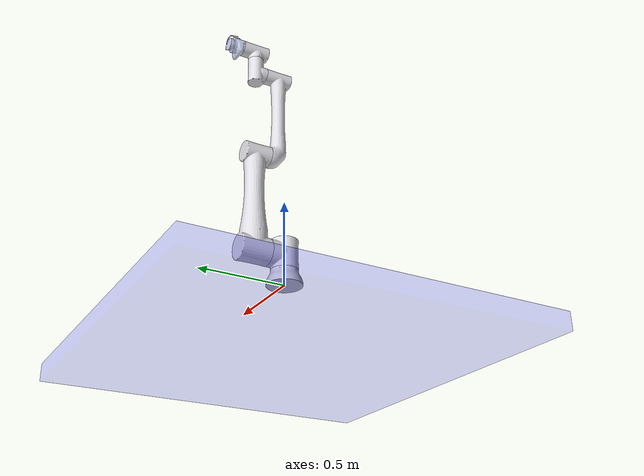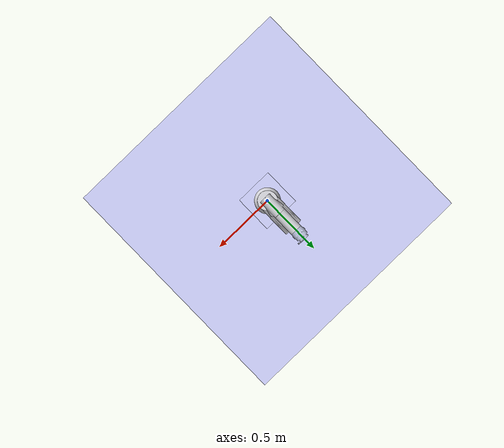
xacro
<?xml version="1.0" encoding="UTF-8"?>
<robot xmlns:xacro="http://wiki.ros.org/xacro" name="sbot">

  <!-- Use this if parameters are set from the launch file, otherwise delete -->
  <xacro:arg name="prefix" default="" />

  <xacro:arg name="use_mock_hardware" default="false" />
  <xacro:arg name="mock_sensor_commands" default="false" />
  <xacro:arg name="sim_gazebo_classic" default="false" />
  <xacro:arg name="sim_gazebo" default="false" />
  <xacro:arg name="simulation_controllers" default="" />

  <xacro:include filename="$(find standard_bots_description)/urdf/sbot/sbot_macro.xacro"/>
  <xacro:include filename="$(find standard_bots_description)/urdf/sbot/sbot_macro.ros2_control.xacro"/>

  <!-- create link fixed to the "world" -->
  <link name="world" />

  <!-- Load robot's macro with parameters -->
  <!-- set prefix if multiple robots are used -->
  <xacro:sbot prefix="$(arg prefix)" parent="world" >
    <origin xyz="0 0 0" rpy="0 0 ${-pi/2}" />          <!-- position robot in the world -->
  </xacro:sbot>

  <xacro:sbot_ros2_control
    name="sbot"
    prefix="$(arg prefix)"
    use_mock_hardware="$(arg use_mock_hardware)"
    mock_sensor_commands="$(arg mock_sensor_commands)"
    sim_gazebo_classic="$(arg sim_gazebo_classic)"
    sim_gazebo="$(arg sim_gazebo)"
    simulation_controllers="$(arg simulation_controllers)" />

  <!-- base scene -->
  <xacro:arg name="scene_column_a" default="0.3" />
  <xacro:arg name="scene_column_h" default="0.3" />
  <xacro:arg name="scene_floor_a" default="2.0" />
  <xacro:arg name="scene_floor_h" default="0.1" />
  <xacro:arg name="scene_environment_alpha" default="0.1" />

  <xacro:property name="scene_column_a" default="$(arg scene_column_a)" />
  <xacro:property name="scene_column_h" default="$(arg scene_column_h)" />
  <xacro:property name="scene_floor_a" default="$(arg scene_floor_a)" />
  <xacro:property name="scene_floor_h" default="$(arg scene_floor_h)" />
  <xacro:property name="scene_environment_alpha" default="$(arg scene_environment_alpha)" />

  <link name="scene_environment">
    <collision>
      <origin xyz="0 0 ${-1.05*scene_column_h/2}" rpy="0 0 0" />
      <geometry>
        <box size="${scene_column_a} ${scene_column_a} ${scene_column_h}" />
      </geometry>
    </collision>
    <visual>
      <origin xyz="0 0 ${-1.05*scene_column_h/2}" rpy="0 0 0" />
      <geometry>
        <box size="${scene_column_a} ${scene_column_a} ${scene_column_h}" />
      </geometry>
      <material name="blue">
        <color rgba="0 0 1 ${scene_environment_alpha}"/>
      </material>
    </visual>

    <collision>
      <origin xyz="0 0 ${-scene_column_h-scene_floor_h/2}" rpy="0 0 0" />
      <geometry>
        <box size="${scene_floor_a} ${scene_floor_a} ${scene_floor_h}" />
      </geometry>
    </collision>
    <visual>
      <origin xyz="0 0 ${-scene_column_h-scene_floor_h/2}" rpy="0 0 0" />
      <geometry>
        <box size="${scene_floor_a} ${scene_floor_a} ${scene_floor_h}" />
      </geometry>
      <material name="blue">
        <color rgba="0 0 1 ${scene_environment_alpha}"/>
      </material>
    </visual>

  </link>

  <joint name="base_to_scene" type="fixed">
    <parent link="base_link" />
    <child link="scene_environment" />
    <origin rpy="0 0 0" xyz="0 0 0" />
  </joint>

</robot>

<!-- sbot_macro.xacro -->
<robot xmlns:xacro="http://wiki.ros.org/xacro">

  <xacro:include filename="$(find standard_bots_description)/urdf/common.xacro" />
  <xacro:include filename="$(find standard_bots_description)/urdf/materials.xacro" />

  <xacro:macro name="sbot" params="prefix parent *origin">
    <!-- LINKS -->
    <!-- base link -->
    <link name="${prefix}base_link">
      <xacro:base_link_inertial/>
      <visual>
        <origin xyz="0 0 0" rpy="0 0 0" />
        <geometry>
           <mesh filename="package://standard_bots_description/meshes/sbot/visual/base_link.STL" />
        </geometry>
        <material name="base_link_color"/>
      </visual>
      <collision>
        <origin xyz="0 0 0" rpy="0 0 0" />
        <geometry>
          <mesh filename="package://standard_bots_description/meshes/sbot/collision/base_link.STL" />
        </geometry>
      </collision>
    </link>
    <!-- shoulder_link -->
    <link name="${prefix}shoulder_link">
      <xacro:shoulder_link_inertial/>
      <visual>
        <origin xyz="0 0 0" rpy="0 0 0" />
        <geometry>
          <mesh filename="package://standard_bots_description/meshes/sbot/visual/shoulder_link.STL" />
        </geometry>
        <material name="shoulder_link_color"/>
      </visual>
      <collision>
        <origin xyz="0 0 0" rpy="0 0 0" />
        <geometry>
          <mesh filename="package://standard_bots_description/meshes/sbot/collision/shoulder_link.STL" />
        </geometry>
      </collision>
    </link>
    <!-- upper_arm_link -->
    <link name="${prefix}upper_arm_link">
      <xacro:upper_arm_link_inertial/>
      <visual>
        <origin xyz="0 0 0" rpy="0 0 0" />
        <geometry>
          <mesh filename="package://standard_bots_description/meshes/sbot/visual/upper_arm_link.STL" />
        </geometry>
        <material name="upper_arm_link_color"/>
      </visual>
      <collision>
        <origin xyz="0 0 0" rpy="0 0 0" />
        <geometry>
          <mesh filename="package://standard_bots_description/meshes/sbot/collision/upper_arm_link.STL" />
        </geometry>
      </collision>
    </link>
    <!-- forearm_link -->
    <link name="${prefix}forearm_link">
      <xacro:forearm_link_inertial/>
      <visual>
        <origin xyz="0 0 0" rpy="0 0 0" />
        <geometry>
          <mesh filename="package://standard_bots_description/meshes/sbot/visual/forearm_link.STL" />
        </geometry>
        <material name="forearm_link_color"/>
      </visual>
      <collision>
        <origin xyz="0 0 0" rpy="0 0 0" />
        <geometry>
          <mesh filename="package://standard_bots_description/meshes/sbot/collision/forearm_link.STL" />
        </geometry>
      </collision>
    </link>
    <!-- wrist_1_link -->
    <link name="${prefix}wrist_1_link">
      <xacro:wrist_1_link_inertial/>
      <visual>
        <origin xyz="0 0 0" rpy="0 0 0" />
        <geometry>
          <mesh filename="package://standard_bots_description/meshes/sbot/visual/wrist_1_link.STL" />
        </geometry>
        <material name="wrist_1_link_color"/>
      </visual>
      <collision>
        <origin xyz="0 0 0" rpy="0 0 0" />
        <geometry>
          <mesh filename="package://standard_bots_description/meshes/sbot/collision/wrist_1_link.STL" />
        </geometry>
      </collision>
    </link>
    <!-- wrist_2_link -->
    <link name="${prefix}wrist_2_link">
      <xacro:wrist_2_link_inertial/>
      <visual>
        <origin xyz="0 0 0" rpy="0 0 0" />
        <geometry>
          <mesh filename="package://standard_bots_description/meshes/sbot/visual/wrist_2_link.STL" />
        </geometry>
        <material name="wrist_2_link_color"/>
      </visual>
      <collision>
        <origin xyz="0 0 0" rpy="0 0 0" />
        <geometry>
          <mesh filename="package://standard_bots_description/meshes/sbot/collision/wrist_2_link.STL" />
        </geometry>
      </collision>
    </link>
    <!-- wrist_3_link -->
    <link name="${prefix}wrist_3_link">
      <xacro:wrist_3_link_inertial/>
      <visual>
        <origin xyz="0 0 0" rpy="0 0 0" />
        <geometry>
          <mesh filename="package://standard_bots_description/meshes/sbot/visual/wrist_3_link.STL" />
        </geometry>
        <material name="wrist_3_link_color"/>
      </visual>
      <collision>
        <origin xyz="0 0 0" rpy="0 0 0" />
        <geometry>
          <mesh filename="package://standard_bots_description/meshes/sbot/collision/wrist_3_link.STL" />
        </geometry>
      </collision>
    </link>

    <!-- All-zero tool frame. This frame should correspond to the TOOL frame of the robot's controller.) -->
    <link name="${prefix}tool0" />
    <!-- tool link -->

    <!-- A collision box to represent the gripper -->
    <link name="${prefix}gripper">
      <collision>
        <origin xyz="0 0 0.0785" rpy="0 0 0"/>
        <geometry>
          <box size="0.1446 0.1446 0.1565"/>
        </geometry>
      </collision>
    </link>

<!-- START Delete if not needed -->
    <!-- This frame should correspond to the BASE coordinate system of robot's controller.) -->
    <link name="${prefix}base" />
    <!-- Frame for mounting EEF models to a manipulator. x+ axis points forward (REP 103). -->
    <link name="${prefix}flange" />
<!-- END Delete if not needed  -->
    <!-- END LINKS -->

    <!-- JOINTS -->
    <!-- base_joint fixes base_link to the environment -->
    <joint name="${prefix}base_joint" type="fixed">
      <xacro:insert_block name="origin" />
      <parent link="${parent}" />
      <child link="${prefix}base_link" />
    </joint>
    <!-- joint 0 -->
    <joint name="${prefix}joint0" type="revolute">
      <origin xyz="0 0 0.172" rpy="0 0 0" />
      <parent link="${prefix}base_link" />
      <child link="${prefix}shoulder_link" />
      <axis xyz="0 0 1" />
      <limit effort="346" lower="${radians(-360)}" upper="${radians(360)}" velocity="${radians(270)}" />
    </joint>
    <!-- joint 1 -->
    <joint name="${prefix}joint1" type="revolute">
      <origin xyz="-0.1885 0 0" rpy="0 0 0" />
      <parent link="${prefix}shoulder_link" />
      <child link="${prefix}upper_arm_link" />
      <axis xyz="-1 0 0" />
      <limit effort="346" lower="${radians(-135)}" upper="${radians(135)}" velocity="${radians(270)}" />
    </joint>
    <!-- joint 2 -->
    <joint name="${prefix}joint2" type="revolute">
      <origin xyz="0.14635000035763 0 0.5906999941826" rpy="0 0 0" />
      <parent link="${prefix}upper_arm_link" />
      <child link="${prefix}forearm_link" />
      <axis xyz="-1 0 0" />
      <limit effort="163" lower="${radians(-180)}" upper="${radians(180)}" velocity="${radians(288)}" />
    </joint>
    <!-- joint 3 -->
    <joint name="${prefix}joint3" type="revolute">
      <origin xyz="-0.1498 0 0.5494" rpy="0 0 0" />
      <parent link="${prefix}forearm_link" />
      <child link="${prefix}wrist_1_link" />
      <axis xyz="-1 0 0" />
      <limit effort="63" lower="${radians(-360)}" upper="${radians(360)}" velocity="${radians(390)}" />
    </joint>
    <!-- joint 4 -->
    <joint name="${prefix}joint4" type="revolute">
      <origin xyz="0 0 0.1498" rpy="0 0 0" />
      <parent link="${prefix}wrist_1_link" />
      <child link="${prefix}wrist_2_link" />
      <axis xyz="0 0 1" />
      <limit effort="63" lower="${radians(-360)}" upper="${radians(360)}" velocity="${radians(390)}" />
    </joint>
    <!-- joint 5 -->
    <joint name="${prefix}joint5" type="revolute">
      <origin xyz="-0.1767 0 0" rpy="0 0 0" />
      <parent link="${prefix}wrist_2_link" />
      <child link="${prefix}wrist_3_link" />
      <axis xyz="-1 0 0" />
      <limit effort="63" lower="${radians(-360)}" upper="${radians(360)}" velocity="${radians(390)}" />
    </joint>

    <!-- tool frame - fixed frame -->
    <joint name="${prefix}joint5-tool0" type="fixed">
      <parent link="${prefix}wrist_3_link" />
      <child link="${prefix}tool0" />
        <origin xyz="0 0 0" rpy="${pi/2} 0 ${-pi/2}" />
    </joint>
    <!-- END JOINTS -->

<!-- START Delete if not needed -->
    <joint name="${prefix}base_link-base_joint" type="fixed">
      <origin xyz="0 0 0" rpy="0 0 0" />
      <parent link="${prefix}base_link" />
      <child link="${prefix}base" />
    </joint>

    <joint name="${prefix}tool0-flange_joint" type="fixed">
      <origin xyz="0 0 0" rpy="0 0 0" />
      <parent link="${prefix}tool0" />
      <child link="${prefix}flange" />
    </joint>

    <joint name="${prefix}tool0-gripper" type="fixed">
      <origin xyz="0 0 0" rpy="0 0 0" />
      <parent link="${prefix}tool0" />
      <child link="${prefix}gripper" />
    </joint>

<!-- END Delete if not needed  -->

  </xacro:macro>
</robot>

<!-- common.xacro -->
<robot xmlns:xacro="http://www.ros.org/wiki/xacro">

  <!-- see https://secure.wikimedia.org/wikipedia/en/wiki/List_of_moment_of_inertia_tensors -->
  <xacro:macro name="sphere_inertial" params="radius mass *origin">
    <inertial>
      <mass value="${mass}" />
      <xacro:insert_block name="origin" />
      <inertia ixx="${2.0/5 * mass * radius * radius}" ixy="0.0" ixz="0.0"
        iyy="${2.0/5 * mass * radius * radius}" iyz="0.0"
        izz="${2.0/5 * mass * radius * radius}" />
    </inertial>
  </xacro:macro>

  <xacro:macro name="cylinder_inertial" params="radius length mass *origin">
    <inertial>
      <mass value="${mass}" />
      <xacro:insert_block name="origin" />
      <inertia ixx="${1.0/12 * mass * (3 * radius * radius + length * length)}" ixy="0.0" ixz="0.0"
        iyy="${1.0/12 * mass * (3 * radius * radius + length * length)}" iyz="0.0"
        izz="${1.0/2 * mass * radius * radius}" />
    </inertial>
  </xacro:macro>

  <xacro:macro name="box_inertial" params="x y z mass *origin">
    <inertial>
      <mass value="${mass}" />
      <xacro:insert_block name="origin" />
      <inertia ixx="${1.0/12 * mass * (y*y + z*z)}" ixy="0.0" ixz="0.0"
        iyy="${1.0/12 * mass * (x*x + z*z)}" iyz="0.0"
        izz="${1.0/12 * mass * (x*x + y*y)}" />
    </inertial>
  </xacro:macro>

  <xacro:macro name="spherical_cap_inertial" params="r h mass *origin">
    <inertial>
      <mass value="${mass}" />
      <xacro:insert_block name="origin" />
      <inertia ixx="${(-3*h*h*h/20+3*h*h*r/4-4*h*r*r/3+r*r*r)*3*mass/(3*r-h)+(3/4*(h-2*r)*(h-2*r)/(3*r-h))*(3/4*(h-2*r)*(h-2*r)/(3*r-h))}" ixy="0.0" ixz="0.0"
        iyy="${(-3*h*h*h/20+3*h*h*r/4-4*h*r*r/3+r*r*r)*3*mass/(3*r-h)+(3/4*(h-2*r)*(h-2*r)/(3*r-h))*(3/4*(h-2*r)*(h-2*r)/(3*r-h))}" iyz="0.0"
        izz="${mass*h/(10*(3*r-h))*(3*h*h-15*h*r+20*r*r)}" />
      <origin></origin>
    </inertial>
  </xacro:macro>

  <xacro:macro name="hollow_spherical_cap_inertial" params="r h t mass *origin">
    <inertial>
      <mass value="${mass}" />
      <xacro:insert_block name="origin" />
      <inertia ixx="${mass/20*(20*h*h*h*r-10*h*h*h*t-60*h*h*r*r+30*h*h*r*t+120*h*r*r*r-120*h*r*r*t+60*h*r*t*t-15*h*t*t*t-60*r*r*r*t+100*r*r*t*t-65*r*t*t*t+16*t*t*t*t)/(2*t*t*-3*r*t-3*h*t+6*h*r)+(3/4*(t-2*r)*(2*r*r-4*r*r+2*r*t-t*t)/(6*r*r-3*r*t-3*r*t+2*t*t))*(3/4*(t-2*r)*(2*r*r-4*r*r+2*r*t-t*t)/(6*r*r-3*r*t-3*r*t+2*t*t))}" ixy="0.0" ixz="0.0"
        iyy="${mass/20*(20*h*h*h*r-10*h*h*h*t-60*h*h*r*r+30*h*h*r*t+120*h*r*r*r-120*h*r*r*t+60*h*r*t*t-15*h*t*t*t-60*r*r*r*t+100*r*r*t*t-65*r*t*t*t+16*t*t*t*t)/(2*t*t*-3*r*t-3*h*t+6*h*r)+(3/4*(t-2*r)*(2*r*r-4*r*r+2*r*t-t*t)/(6*r*r-3*r*t-3*r*t+2*t*t))*(3/4*(t-2*r)*(2*r*r-4*r*r+2*r*t-t*t)/(6*r*r-3*r*t-3*r*t+2*t*t))}" iyz="0.0"
        izz="${mass/(10*(2*t*t-3*r*t-3*h*t+6*h*r))*(-20*h*h*h*r+10*h*h*h*t+60*h*h*r*r-30*h*h*r*t-60*h*r*r*t+60*h*r*t*t-15*h*t*t*t+20*r*r*t*t-25*r*t*t*t+8*t*t*t*t)}" />
    </inertial>
  </xacro:macro>

  <xacro:macro name="default_inertial">
    <inertial>
      <mass value="0.01"/>
      <origin xyz="0 0 0"/>
      <inertia ixx="0.001" ixy="0.0" ixz="0.0" iyy="0.001" iyz="0.0" izz="0.001" />
    </inertial>
  </xacro:macro>

  <xacro:macro name="base_link_inertial">
      <inertial>
        <origin
          xyz="3.5615E-07 -3.5615E-07 0.038531"
          rpy="0 0 0" />
        <mass
          value="1.3899" />
        <inertia
          ixx="0.0032902"
          ixy="-4.9417E-13"
          ixz="6.3717E-08"
          iyy="0.0032903"
          iyz="-6.3717E-08"
          izz="0.0056833" />
      </inertial>
  </xacro:macro>

  <xacro:macro name="shoulder_link_inertial">
    <inertial>
      <origin
              xyz="-0.0155060034853395 5.31133813950851E-06 0.00202665932285853"
              rpy="0 0 0" />
      <mass
              value="7.48000886526123" />
      <inertia
              ixx="0.0290130325419372"
              ixy="1.13558315803054E-06"
              ixz="-0.000123670453068877"
              iyy="0.0296005432331486"
              iyz="7.83938203517328E-08"
              izz="0.0236795403640951" />
    </inertial>
  </xacro:macro>

  <xacro:macro name="upper_arm_link_inertial">
    <inertial>
      <origin
              xyz="0.00037048 -1.0498E-06 0.24431"
              rpy="0 0 0" />
      <mass
              value="13.27" />
      <inertia
              ixx="0.67313"
              ixy="1.0675E-07"
              ixz="-0.0075436"
              iyy="0.67925"
              iyz="-4.7892E-06"
              izz="0.037155" />
    </inertial>
  </xacro:macro>

  <xacro:macro name="forearm_link_inertial">
    <inertial>
      <origin
              xyz="-0.00856270285673266 -0.000680803891636816 0.284368892424253"
              rpy="0 0 0" />
      <mass
              value="3.99015526098533" />
      <inertia
              ixx="0.183498055568642"
              ixy="5.42912788104132E-05"
              ixz="-0.00223976271110487"
              iyy="0.185228712942926"
              iyz="0.000226731091687184"
              izz="0.00597848990228215" />
    </inertial>
  </xacro:macro>

  <xacro:macro name="wrist_1_link_inertial">
    <inertial>
      <origin
              xyz="0.00603382118543186 5.30466422090696E-05 0.00949427052813601"
              rpy="0 0 0" />
      <mass
              value="2.34998758206812" />
      <inertia
              ixx="0.00536507490753713"
              ixy="-1.22216192461661E-06"
              ixz="7.53472115754737E-05"
              iyy="0.00569170816671894"
              iyz="-2.77149728808046E-06"
              izz="0.00279356137797234" />
    </inertial>
  </xacro:macro>

  <xacro:macro name="wrist_2_link_inertial">
    <inertial>
      <origin
              xyz="-0.00949427052813648 -5.30466422084472E-05 -0.00603382118543183"
              rpy="0 0 0" />
      <mass
              value="2.34998758206813" />
      <inertia
              ixx="0.00279356137797234"
              ixy="-2.77149728807979E-06"
              ixz="7.53472115754781E-05"
              iyy="0.00569170816671896"
              iyz="-1.2221619246072E-06"
              izz="0.00536507490753716" />
    </inertial>
  </xacro:macro>

  <xacro:macro name="wrist_3_link_inertial">
    <inertial>
      <origin
              xyz="0.0477321679131623 0.00028403740032851 -0.00497796255034433"
              rpy="0 0 0" />
      <mass
              value="0.572775624406093" />
      <inertia
              ixx="0.000707097246403867"
              ixy="7.23198267535677E-06"
              ixz="4.16184287898907E-05"
              iyy="0.000679826517402998"
              iyz="-2.50233694519018E-06"
              izz="0.000615679707653451" />
    </inertial>
  </xacro:macro>

</robot>

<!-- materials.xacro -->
<robot xmlns:xacro="http://www.ros.org/wiki/xacro">

  <material name="base_link_color">
    <color rgba="0.86667 0.86667 0.8902 1" />
  </material>

  <material name="shoulder_link_color">
    <color rgba="0.866666666666667 0.866666666666667 0.890196078431372 1" />
  </material>

  <material name="upper_arm_link_color">
    <color rgba="0.86667 0.86667 0.8902 1" />
  </material>

  <material name="forearm_link_color">
    <color rgba="0.866666666666667 0.866666666666667 0.890196078431372 1" />
  </material>

  <material name="wrist_1_link_color">
    <color rgba="0.866666666666667 0.866666666666667 0.890196078431372 1" />
  </material>

  <material name="wrist_2_link_color">
    <color rgba="0.866666666666667 0.866666666666667 0.890196078431372 1" />
  </material>

  <material name="wrist_3_link_color">
    <color rgba="0.792156862745098 0.819607843137255 0.933333333333333 1" />
  </material>

</robot>
